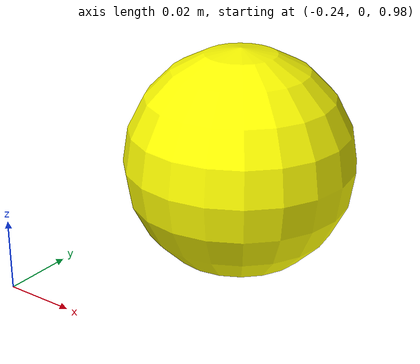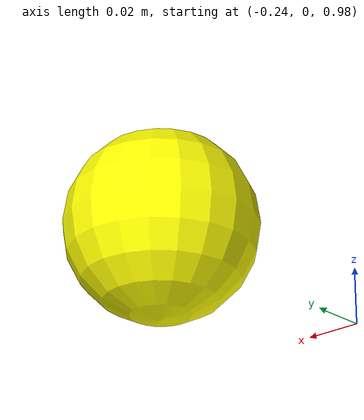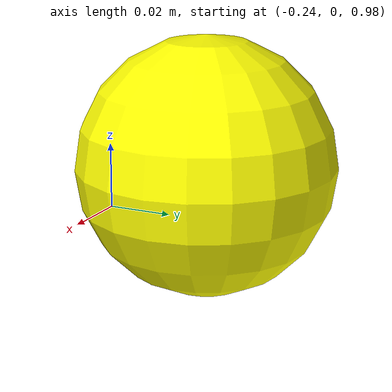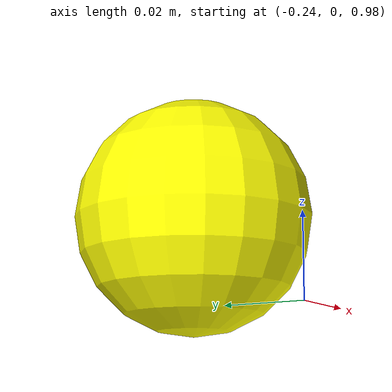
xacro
<?xml version="1.0"?>
<robot xmlns:xacro="http://www.ros.org/wiki/xacro" name="tennis_ball">

  <xacro:arg name="show_frame" default="false"/>
  <xacro:property name="show_frame" value="$(arg show_frame)"/>

  <!-- Material Definition (URDF-side, used by robot_state_publisher / RViz) -->
  <material name="yellow">
    <color rgba="1 1 0 1"/>
  </material>

  <material name="black">
    <color rgba="0 0 0 1"/>
  </material>

  <link name="world">
  </link>

  <link name="base_link">
    <origin xyz="0 0 0" rpy="0 0 0"/>
    <xacro:if value="${show_frame}">
      <visual>
        <geometry>
          <box size="1.2 0.01 0.01"/>
        </geometry>
        <material name="black"/>
      </visual>
    </xacro:if>
    <collision>
      <geometry>
        <box size="1.2 0.01 0.01"/>
      </geometry>
    </collision>
    <inertial>
      <mass value="10"/>
      <origin rpy="0 0 0" xyz="0 0 0"/>
      <!-- was iyy/izz "0.0.06041666667" (invalid) -> 0.06041666667 -->
      <inertia ixx="0.008333333333" ixy="0" ixz="0" iyy="0.06041666667" iyz="0" izz="0.06041666667"/>
    </inertial>
  </link>

  <!-- The cylindrical robot -->
  <link name="theta_link">
    <xacro:if value="${show_frame}">
      <visual>
        <origin xyz="0 0.380 0" rpy="0 0 0"/>
        <geometry>
          <box size="0.01 0.75 0.01"/>
        </geometry>
        <material name="black"/>
      </visual>
    </xacro:if>

    <collision>
      <origin xyz="0 0 0" rpy="0 0 0"/>
      <geometry>
        <box size="0.01 0.75 0.01"/>
      </geometry>
    </collision>

    <inertial>
      <mass value="0.5"/>
      <origin rpy="0 0 0" xyz="0 0 0"/>
      <!-- was ixx/izz "0.0.06041666667" (invalid) -> 0.06041666667 -->
      <inertia ixx="0.06041666667" ixy="0" ixz="0" iyy="0.0008333333333" iyz="0" izz="0.06041666667"/>
    </inertial>
  </link>

  <link name="r_link">
    <xacro:if value="${show_frame}">
      <visual>
        <origin xyz="0 0 0" rpy="0 0 0"/>
        <geometry>
          <box size="0.01 0.01 2.0"/>
        </geometry>
        <material name="black"/>
      </visual>
    </xacro:if>

    <collision>
      <origin xyz="0 0 0" rpy="0 0 0"/>
      <geometry>
        <box size="0.01 0.01 2.0"/>
      </geometry>
    </collision>

    <inertial>
      <mass value="0.5"/>
      <origin rpy="0 0 0" xyz="0 0 0"/>
      <!-- was ixx/iyy "0.0.06041666667" (invalid) -> 0.06041666667 -->
      <inertia ixx="0.06041666667" ixy="0" ixz="0" iyy="0.06041666667" iyz="0" izz="0.0008333333333"/>
    </inertial>
  </link>

  <link name="z_link">
    <xacro:if value="${show_frame}">
      <visual>
        <origin xyz="0 0 0" rpy="0 0 0"/>
        <geometry>
          <box size="0.01 0.01 0.01"/>
        </geometry>
        <material name="black"/>
      </visual>
    </xacro:if>

    <collision>
      <origin xyz="0 0 0" rpy="0 0 0"/>
      <geometry>
        <box size="0.01 0.01 0.01"/>
      </geometry>
    </collision>

    <inertial>
      <mass value="0.5"/>
      <origin rpy="0 0 0" xyz="0 0 0"/>
      <!-- was ixx/izz "0.0.008333333333" (invalid) -> 0.008333333333 -->
      <inertia ixx="0.008333333333" ixy="0" ixz="0" iyy="0.0008333333333" iyz="0" izz="0.008333333333"/>
    </inertial>
  </link>

  <!-- Link Definition -->
  <link name="ball">
    <visual>
      <origin xyz="0 0 0" rpy="0 0 0"/>
      <geometry>
        <sphere radius="0.033"/>
      </geometry>
      <material name="yellow"/>
    </visual>
    <collision>
      <origin xyz="0 0 0" rpy="0 0 0"/>
      <geometry>
        <sphere radius="0.033"/>
      </geometry>
    </collision>
    <inertial>
      <origin xyz="0 0 0" rpy="0 0 0"/>
      <mass value="1"/>
      <inertia ixx="0.001" ixy="0" ixz="0" iyy="0.001" iyz="0" izz="0.001"/>
    </inertial>
  </link>

  <!-- Joints  -->
  <joint name="world_to_base_link_joint" type="fixed">
      <origin xyz="-0.2 -0.415 0.005" rpy="0 0 0"/>
      <parent link="world"/>
      <child link="base_link"/>
  </joint>

  <joint name="theta_joint" type="revolute">
      <axis xyz="0 0 1"/>
      <origin xyz="0 0 0" rpy="0 0 0"/>
      <parent link="base_link"/>
      <child link="theta_link"/>
      <limit effort="1000" velocity="5.0" lower="-1.5707" upper="1.5707"/>
      <dynamics damping="1.0" friction="0.0"/>
  </joint>

  <joint name="r_joint" type="prismatic">
      <origin xyz="0 0.505 1.005" rpy="0 0 0"/>
      <parent link="theta_link"/>
      <child link="r_link"/>
      <axis xyz="0 1 0"/>
      <limit effort="1000" velocity="5.0" lower="-0.35" upper="0.1"/>
      <dynamics damping="1.0" friction="0.0"/>
  </joint>

  <joint name="z_joint" type="prismatic">
      <origin xyz="0 -0.005 0" rpy="0 0 0"/>
      <parent link="r_link"/>
      <child link="z_link"/>
      <axis xyz="0 0 1"/>
      <limit effort="1000" velocity="5.0" lower="-0.2" upper="0.75"/>
      <dynamics damping="1.0" friction="0.0"/>
  </joint>

  <joint name="fixed_joint" type="fixed">
      <origin xyz="0 -0.033 0" rpy="0 0 0"/>
      <parent link="z_link"/>
      <child link="ball"/>
  </joint>

  <!-- Ignition Fortress system plugins + Fortress materials -->
  <xacro:include filename="gazebo_plugin_cylindrical_gz.xacro" />

</robot>
